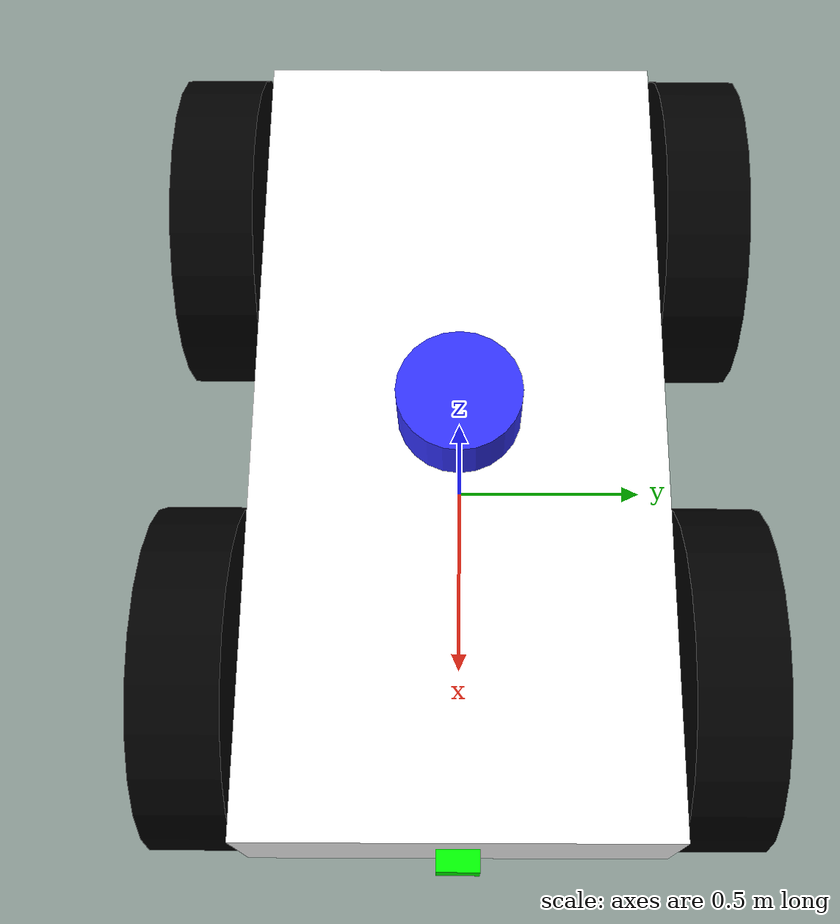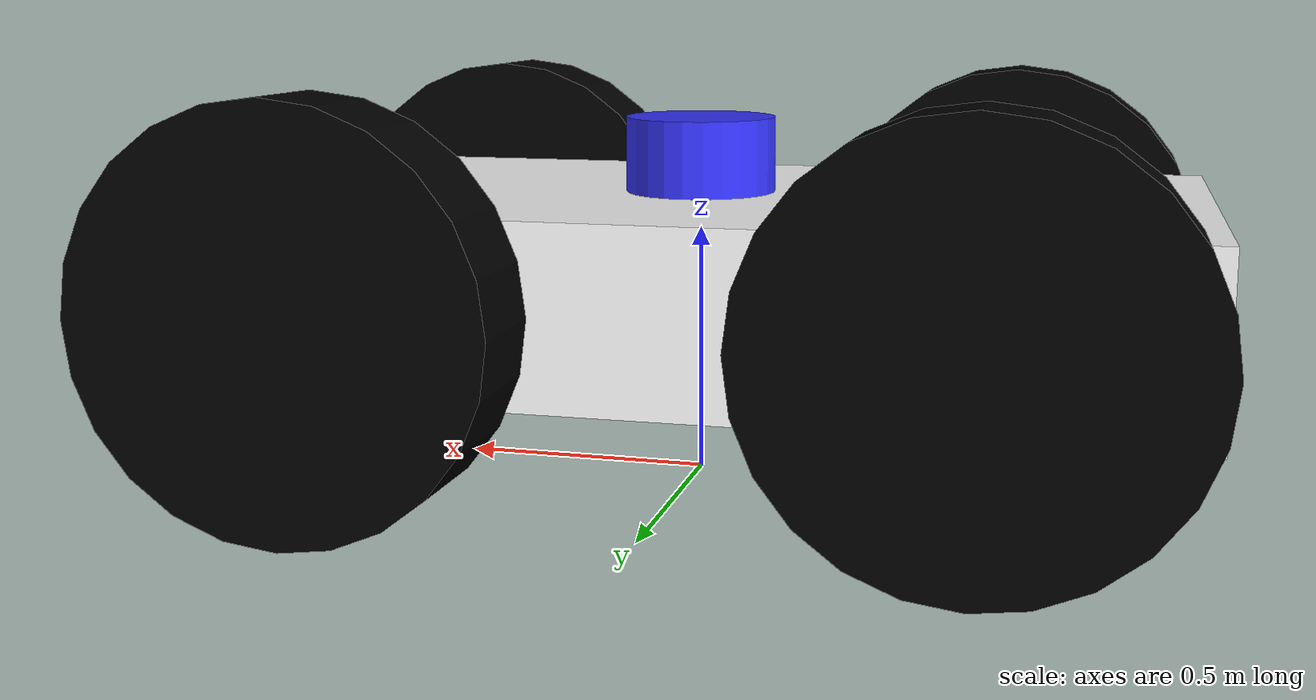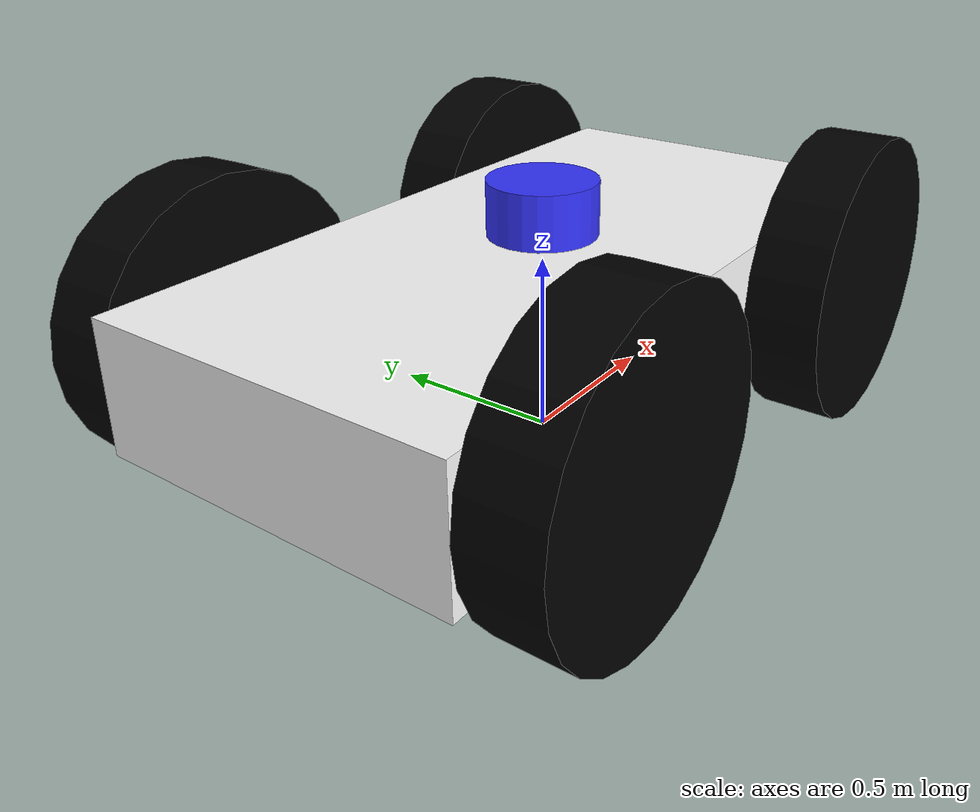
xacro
<?xml version="1.0"?>

<robot xmlns:xacro="http://www.ros.org/wiki/xacro" name="nomeer1_robot">

    <!--include robot parts-->
    <!--base_link-->
    <xacro:include filename="base.xacro"/>
    <xacro:include filename="../Robot Accessories/camera.xacro"/>
    <xacro:include filename="../Robot Accessories/lidar.xacro"/>
    <xacro:include filename="../Robot Accessories/wheel.xacro"/>

    <!--create link objects-->
    <xacro:camera_link name="camera"/>
    <xacro:lidar_link name="lidar"/>
    <xacro:wheel_link name="wheel1"/>
    <xacro:wheel_link name="wheel2"/>
    <xacro:wheel_link name="wheel3"/>
    <xacro:wheel_link name="wheel4"/>

    <!--create joints-->
    <!--camera joint-->
    <joint name="base_camera" type="fixed">
        <parent link="base_link"/>
        <child link="camera"/>
        <origin xyz="1.0 0.0 0.0" rpy="0.0 0.0 0.0"/>
    </joint>

    <!--lidar joint-->
    <joint name="base_lidar" type="fixed">
        <parent link="base_link"/>
        <child link="lidar"/>
        <origin xyz="0.0 0.0 0.225" rpy="0.0 0.0 0.0"/>
    </joint>

    <!--wheel1 joint-->
    <joint name="base_wheel1" type="continuous">
        <parent link="base_link"/>
        <child link="wheel1"/>
        <origin xyz="0.6 0.6 0.0" rpy="0.0 0.0 0.0"/>
        <axis xyz="0.0 1.0 0.0"/>
    </joint>

    <!--wheel2 joint-->
    <joint name="base_wheel2" type="continuous">
        <parent link="base_link"/>
        <child link="wheel2"/>
        <origin xyz="-0.6 0.6 0.0" rpy="0.0 0.0 0.0"/>
        <axis xyz="0.0 1.0 0.0"/>
    </joint>

    <!--wheel3 joint-->
    <joint name="base_wheel3" type="continuous">
        <parent link="base_link"/>
        <child link="wheel3"/>
        <origin xyz="0.6 -0.6 0.0" rpy="0.0 0.0 0.0"/>
        <axis xyz="0.0 -1.0 0.0"/>
    </joint>

    <!--wheel4 joint-->
    <joint name="base_wheel4" type="continuous">
        <parent link="base_link"/>
        <child link="wheel4"/>
        <origin xyz="-0.6 -0.6 0.0" rpy="0.0 0.0 0.0"/>
        <axis xyz="0.0 -1.0 0.0"/>
    </joint>

</robot>

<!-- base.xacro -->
<robot xmlns:xacro="http://www.ros.org/wiki/xacro" name="robot_name">

    <xacro:include filename="../guiding files/inertial_macros.xacro"/>
    <xacro:include filename="../Robot Accessories/material.xacro"/>

    <link name="base_link">

        <visual name="base_visual">
            <origin xyz="0.0 0.0 0.4" rpy="0.0 0.0 0.0"/>
            <geometry>
                <box size="2.0 1.0 0.35"/>
            </geometry>
            <material name="white"/>
        </visual>

        <collision name="base_collison">
            <origin xyz="0.0 0.0 0.4" rpy="0.0 0.0 0.0"/>
            <geometry>
                <box size="4.0 2.0 1.0"/>
            </geometry>
        </collision>

        <xacro:inertial_box mass="30" x="4.0" y="2.0" z="1.0">
            <origin xyz="0.0 0 0.4" rpy="0 0 0"/>
        </xacro:inertial_box>
    </link>

</robot>

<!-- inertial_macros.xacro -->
<robot xmlns:xacro="http://www.ros.org/wiki/xacro">

    <!-- Specify some standard inertial calculations https://en.wikipedia.org/wiki/List_of_moments_of_inertia -->
    <!-- These make use of xacro's mathematical functionality -->

    <xacro:macro name="inertial_sphere" params="mass radius *origin">
        <inertial>
            <xacro:insert_block name="origin"/>
            <mass value="${mass}" />
            <inertia ixx="${(2/5) * mass * (radius*radius)}" ixy="0.0" ixz="0.0" iyy="${(2/5) * mass * (radius*radius)}" iyz="0.0" izz="${(2/5) * mass * (radius*radius)}" />
        </inertial>
    </xacro:macro>

    <xacro:macro name="inertial_box" params="mass x y z *origin">
        <inertial>
            <xacro:insert_block name="origin"/>
            <mass value="${mass}" />
            <inertia ixx="${(1/12) * mass * (y*y+z*z)}" ixy="0.0" ixz="0.0" iyy="${(1/12) * mass * (x*x+z*z)}" iyz="0.0" izz="${(1/12) * mass * (x*x+y*y)}" />
        </inertial>
    </xacro:macro>

    <xacro:macro name="inertial_cylinder" params="mass length radius *origin">
        <inertial>
            <xacro:insert_block name="origin"/>
            <mass value="${mass}" />
            <inertia ixx="${(1/12) * mass * (3*radius*radius + length*length)}" ixy="0.0" ixz="0.0" iyy="${(1/12) * mass * (3*radius*radius + length*length)}" iyz="0.0" izz="${(1/2) * mass * (radius*radius)}" />
        </inertial>
    </xacro:macro>

</robot>

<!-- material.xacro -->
<robot xmlns:xacro="http://www.ros.org/wiki/xacro">

    <material name="white">
        <color rgba="1 1 1 1" />
    </material>

    <material name="orange">
        <color rgba="1 0.3 0.1 1"/>
    </material>

    <material name="blue">
        <color rgba="0.2 0.2 1 1"/>
    </material>

    <material name="green">
        <color rgba="0.0 1.0 0.0 1.0"/>
    </material>

    <material name="black">
        <color rgba="0 0 0 1"/>
    </material>

</robot>

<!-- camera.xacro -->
<robot xmlns:xacro="http://www.ros.org/wiki/xacro">
    <xacro:include filename="material.xacro"/>
    <xacro:include filename="../guiding files/inertial_macros.xacro"/>

    <xacro:macro name="camera_link" params="name">

        <link name="${name}">

            <visual name="${name}_visual">
                <origin xyz="0.0 0.0 0.4" rpy="0.0 0.0 0.0"/>
                <geometry>
                    <box size="0.1 0.1 0.1"/>
                </geometry>
                <material name="green"/>
            </visual>

            <collision name="${name}_collision">
                <origin xyz="0.0 0.0 0.4" rpy="0.0 0.0 0.0"/>
                <geometry>
                    <box size="0.1 0.1 0.1"/>
                </geometry>
            </collision>

            <xacro:inertial_box mass="0.1" x="0.1" y="0.1" z="0.1">
                <origin xyz="0.0 0 0.4" rpy="0 0 0"/>
            </xacro:inertial_box>

        </link>

    </xacro:macro>

</robot>

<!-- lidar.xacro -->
<robot xmlns:xacro="http://www.ros.org/wiki/xacro">

    <xacro:include filename="material.xacro"/>
    <xacro:include filename="../guiding files/inertial_macros.xacro"/>

    <xacro:macro name="lidar_link" params="name">

        <link name="${name}">

            <visual name="${name}_visual">
                <origin xyz="0.0 0.0 0.4" rpy="0.0 0.0 0.0"/>
                <geometry>
                    <cylinder radius="0.15" length="0.2"/>
                </geometry>
                <material name="blue"/>
            </visual>

            <collision name="${name}_collision">
                <origin xyz="0.0 0.0 0.4" rpy="0.0 0.0 0.0"/>
                <geometry>
                    <cylinder radius="0.15" length="0.2"/>
                </geometry>
            </collision>

            <xacro:inertial_cylinder mass="0.1" length="0.2" radius="0.15">
                <origin xyz="0.0 0.0 0.4" rpy="0 0 0"/>
            </xacro:inertial_cylinder>

        </link>

    </xacro:macro>

</robot>

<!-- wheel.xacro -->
<robot xmlns:xacro="http://www.ros.org/wiki/xacro">

    <xacro:include filename="material.xacro"/>
    <xacro:include filename="../guiding files/inertial_macros.xacro"/>

    <xacro:macro name="wheel_link" params="name">

        <link name="${name}">

            <visual name="${name}_visual">
                <origin xyz="0.0 0.0 0.4" rpy="0.0 1.5707 1.5707"/>
                <geometry>
                    <cylinder radius="0.4" length="0.2"/>
                </geometry>
                <material name="black"/>
            </visual>

            <collision name="${name}_collision">
                <origin xyz="0.0 0.0 0.4" rpy="0.0 1.5707 1.5707"/>
                <geometry>
                    <cylinder radius="0.4" length="0.2"/>
                </geometry>
            </collision>

            <xacro:inertial_cylinder mass="5.0" length="0.2" radius="0.4">
                <origin xyz="0.0 0.0 0.4" rpy="0.0 1.5707 1.5707"/>
            </xacro:inertial_cylinder>

        </link>

    </xacro:macro>

</robot>
